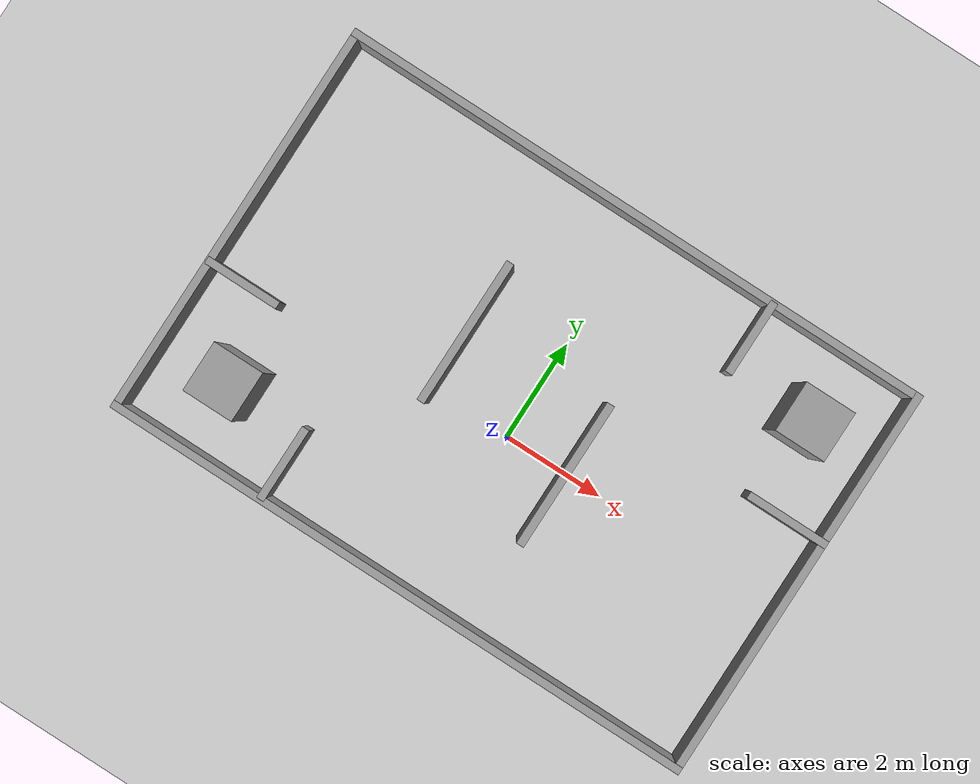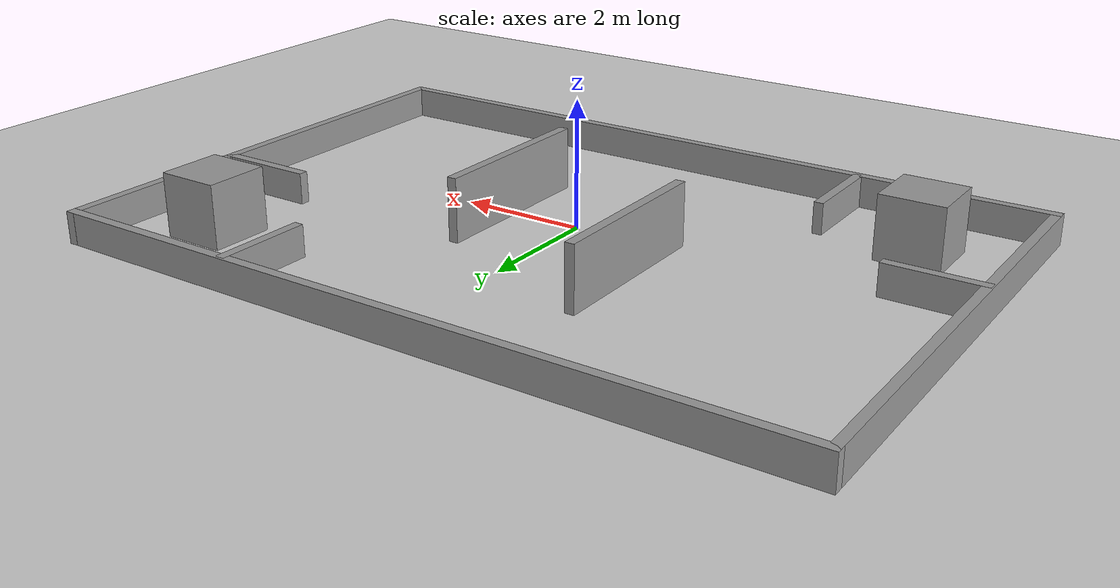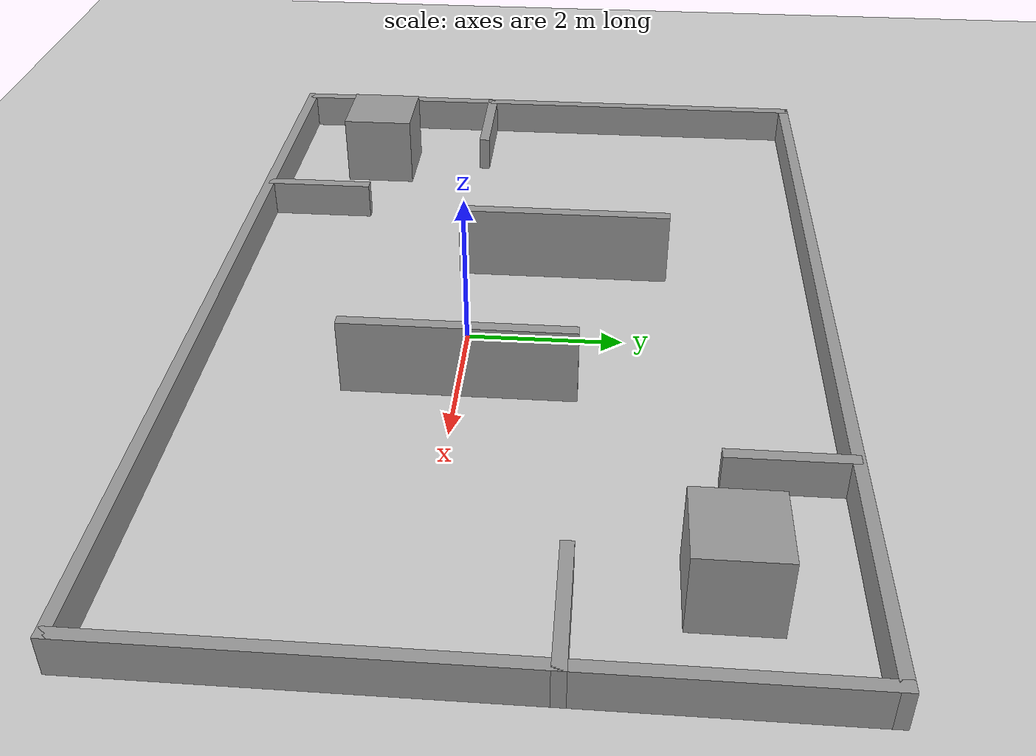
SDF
<sdf version="1.7">
 <world name="default">
  <light name="sun" type="directional">
   <pose>0 0 10 0 -0 0</pose>
   <diffuse>0.8 0.8 0.8 1</diffuse>
   <specular>0.2 0.2 0.2 1</specular>
   <attenuation>
    <range>1000</range>
    <constant>0.9</constant>
    <linear>0.01</linear>
    <quadratic>0.001</quadratic>
   </attenuation>
   <direction>-0.5 0.1 -0.9</direction>
   <spot><inner_angle>0</inner_angle><outer_angle>0</outer_angle><falloff>0</falloff></spot>
  </light>
  <model name="ground_plane">
   <static>1</static>
   <link name="link">
    <collision name="collision">
     <geometry><plane><normal>0 0 1</normal><size>100 100</size></plane></geometry>
     <surface>
      <contact><collide_bitmask>65535</collide_bitmask></contact>
      <friction><ode><mu>100</mu><mu2>50</mu2></ode></friction>
     </surface>
    </collision>
    <visual name="visual">
     <cast_shadows>0</cast_shadows>
     <geometry><plane><normal>0 0 1</normal><size>100 100</size></plane></geometry>
     <material>
      <script><uri>file://media/materials/scripts/gazebo.material</uri><name>Gazebo/Grey</name></script>
     </material>
    </visual>
   </link>
  </model>
  <gravity>0 0 -9.8</gravity>
  <magnetic_field>6e-06 2.3e-05 -4.2e-05</magnetic_field>
  <atmosphere type="adiabatic"/>
  <physics type="ode">
   <max_step_size>0.001</max_step_size>
   <real_time_factor>1</real_time_factor>
   <real_time_update_rate>1000</real_time_update_rate>
  </physics>
  <scene><ambient>0.4 0.4 0.4 1</ambient><background>0.7 0.7 0.7 1</background><shadows>1</shadows></scene>
  <spherical_coordinates>
   <surface_model>EARTH_WGS84</surface_model>
   <latitude_deg>0</latitude_deg>
   <longitude_deg>0</longitude_deg>
   <elevation>0</elevation>
   <heading_deg>0</heading_deg>
  </spherical_coordinates>
  <model name="ua">
   <pose>-0.20037 0.634647 0 0 -0 0</pose>
   <link name="Wall_14">
    <collision name="Wall_14_Collision">
     <geometry><box><size>1.5 0.15 0.5</size></box></geometry>
     <pose>0 0 0.25 0 -0 0</pose>
    </collision>
    <visual name="Wall_14_Visual">
     <pose>0 0 0.25 0 -0 0</pose>
     <geometry><box><size>1.5 0.15 0.5</size></box></geometry>
     <material>
      <script><uri>file://media/materials/scripts/gazebo.material</uri><name>Gazebo/Grey</name></script>
      <ambient>1 1 1 1</ambient>
     </material>
     <meta><layer>0</layer></meta>
    </visual>
    <pose>-5.225 -0.875 0 0 -0 0</pose>
   </link>
   <link name="Wall_16">
    <collision name="Wall_16_Collision">
     <geometry><box><size>1.5 0.15 0.5</size></box></geometry>
     <pose>0 0 0.25 0 -0 0</pose>
    </collision>
    <visual name="Wall_16_Visual">
     <pose>0 0 0.25 0 -0 0</pose>
     <geometry><box><size>1.5 0.15 0.5</size></box></geometry>
     <material>
      <script><uri>file://media/materials/scripts/gazebo.material</uri><name>Gazebo/Grey</name></script>
      <ambient>1 1 1 1</ambient>
     </material>
     <meta><layer>0</layer></meta>
    </visual>
    <pose>-2.875 -3.18 0 0 -0 1.5708</pose>
   </link>
   <link name="Wall_18">
    <collision name="Wall_18_Collision">
     <geometry><box><size>2.852 0.15 1</size></box></geometry>
     <pose>0 0 0.5 0 -0 0</pose>
    </collision>
    <visual name="Wall_18_Visual">
     <pose>0 0 0.5 0 -0 0</pose>
     <geometry><box><size>2.852 0.15 1</size></box></geometry>
     <material>
      <script><uri>file://media/materials/scripts/gazebo.material</uri><name>Gazebo/Grey</name></script>
      <ambient>1 1 1 1</ambient>
     </material>
     <meta><layer>0</layer></meta>
    </visual>
    <pose>-1.393 0.523 0 0 -0 -1.5708</pose>
   </link>
   <link name="Wall_2">
    <collision name="Wall_2_Collision">
     <geometry><box><size>12 0.15 0.5</size></box></geometry>
     <pose>0 0 0.25 0 -0 0</pose>
    </collision>
    <visual name="Wall_2_Visual">
     <pose>0 0 0.25 0 -0 0</pose>
     <geometry><box><size>12 0.15 0.5</size></box></geometry>
     <material>
      <script><uri>file://media/materials/scripts/gazebo.material</uri><name>Gazebo/Grey</name></script>
      <ambient>1 1 1 1</ambient>
     </material>
     <meta><layer>0</layer></meta>
    </visual>
    <pose>-0 -3.925 0 0 -0 0</pose>
   </link>
   <link name="Wall_23">
    <collision name="Wall_23_Collision">
     <geometry><box><size>1.5 0.15 0.5</size></box></geometry>
     <pose>0 0 0.25 0 -0 0</pose>
    </collision>
    <visual name="Wall_23_Visual">
     <pose>0 0 0.25 0 -0 0</pose>
     <geometry><box><size>1.5 0.15 0.5</size></box></geometry>
     <material>
      <script><uri>file://media/materials/scripts/gazebo.material</uri><name>Gazebo/Grey</name></script>
      <ambient>1 1 1 1</ambient>
     </material>
     <meta><layer>0</layer></meta>
    </visual>
    <pose>2.875 3.211 0 0 -0 -1.5708</pose>
   </link>
   <link name="Wall_25">
    <collision name="Wall_25_Collision">
     <geometry><box><size>1.65 0.15 0.5</size></box></geometry>
     <pose>0 0 0.25 0 -0 0</pose>
    </collision>
    <visual name="Wall_25_Visual">
     <pose>0 0 0.25 0 -0 0</pose>
     <geometry><box><size>1.65 0.15 0.5</size></box></geometry>
     <material>
      <script><uri>file://media/materials/scripts/gazebo.material</uri><name>Gazebo/Grey</name></script>
      <ambient>1 1 1 1</ambient>
     </material>
     <meta><layer>0</layer></meta>
    </visual>
    <pose>5.175 0.845 0 0 -0 3.14159</pose>
   </link>
   <link name="Wall_27">
    <collision name="Wall_27_Collision">
     <geometry><box><size>2.889 0.15 1</size></box></geometry>
     <pose>0 0 0.5 0 -0 0</pose>
    </collision>
    <visual name="Wall_27_Visual">
     <pose>0 0 0.5 0 -0 0</pose>
     <geometry><box><size>2.889 0.15 1</size></box></geometry>
     <material>
      <script><uri>file://media/materials/scripts/gazebo.material</uri><name>Gazebo/Grey</name></script>
      <ambient>1 1 1 1</ambient>
     </material>
     <meta><layer>0</layer></meta>
    </visual>
    <pose>1.393 -0.6055 0 0 -0 -1.5708</pose>
   </link>
   <link name="Wall_3">
    <collision name="Wall_3_Collision">
     <geometry><box><size>8 0.15 0.5</size></box></geometry>
     <pose>0 0 0.25 0 -0 0</pose>
    </collision>
    <visual name="Wall_3_Visual">
     <pose>0 0 0.25 0 -0 0</pose>
     <geometry><box><size>8 0.15 0.5</size></box></geometry>
     <material>
      <script><uri>file://media/materials/scripts/gazebo.material</uri><name>Gazebo/Grey</name></script>
      <ambient>1 1 1 1</ambient>
     </material>
     <meta><layer>0</layer></meta>
    </visual>
    <pose>5.925 0 0 0 -0 1.5708</pose>
   </link>
   <link name="Wall_5">
    <collision name="Wall_5_Collision">
     <geometry><box><size>12 0.15 0.5</size></box></geometry>
     <pose>0 0 0.25 0 -0 0</pose>
    </collision>
    <visual name="Wall_5_Visual">
     <pose>0 0 0.25 0 -0 0</pose>
     <geometry><box><size>12 0.15 0.5</size></box></geometry>
     <material>
      <script><uri>file://media/materials/scripts/gazebo.material</uri><name>Gazebo/Grey</name></script>
      <ambient>1 1 1 1</ambient>
     </material>
     <meta><layer>0</layer></meta>
    </visual>
    <pose>-0 3.925 0 0 -0 3.14159</pose>
   </link>
   <link name="Wall_6">
    <collision name="Wall_6_Collision">
     <geometry><box><size>7.99968 0.15 0.5</size></box></geometry>
     <pose>0 0 0.25 0 -0 0</pose>
    </collision>
    <visual name="Wall_6_Visual">
     <pose>0 0 0.25 0 -0 0</pose>
     <geometry><box><size>7.99968 0.15 0.5</size></box></geometry>
     <material>
      <script><uri>file://media/materials/scripts/gazebo.material</uri><name>Gazebo/Grey</name></script>
      <ambient>1 1 1 1</ambient>
     </material>
     <meta><layer>0</layer></meta>
    </visual>
    <pose>-5.925 0 0 0 -0 -1.5708</pose>
   </link>
   <static>1</static>
  </model>
  <model name="unit_box">
   <pose>-4.63734 -1.83069 0.499995 -1e-05 -0 0</pose>
   <link name="link">
    <inertial>
     <mass>1</mass>
     <inertia>
      <ixx>0.166667</ixx>
      <ixy>0</ixy>
      <ixz>0</ixz>
      <iyy>0.166667</iyy>
      <iyz>0</iyz>
      <izz>0.166667</izz>
     </inertia>
    </inertial>
    <collision name="collision"><geometry><box><size>1 1 1</size></box></geometry></collision>
    <visual name="visual">
     <geometry><box><size>1 1 1</size></box></geometry>
     <material>
      <script><name>Gazebo/Grey</name><uri>file://media/materials/scripts/gazebo.material</uri></script>
     </material>
    </visual>
   </link>
  </model>
  <model name="unit_box_0">
   <pose>4.30959 3.14029 0.5 0 -0 0</pose>
   <link name="link">
    <inertial>
     <mass>1</mass>
     <inertia>
      <ixx>0.166667</ixx>
      <ixy>0</ixy>
      <ixz>0</ixz>
      <iyy>0.166667</iyy>
      <iyz>0</iyz>
      <izz>0.166667</izz>
     </inertia>
    </inertial>
    <collision name="collision"><geometry><box><size>1 1 1</size></box></geometry></collision>
    <visual name="visual">
     <geometry><box><size>1 1 1</size></box></geometry>
     <material>
      <script><name>Gazebo/Grey</name><uri>file://media/materials/scripts/gazebo.material</uri></script>
     </material>
    </visual>
   </link>
  </model>
 </world>
</sdf>
